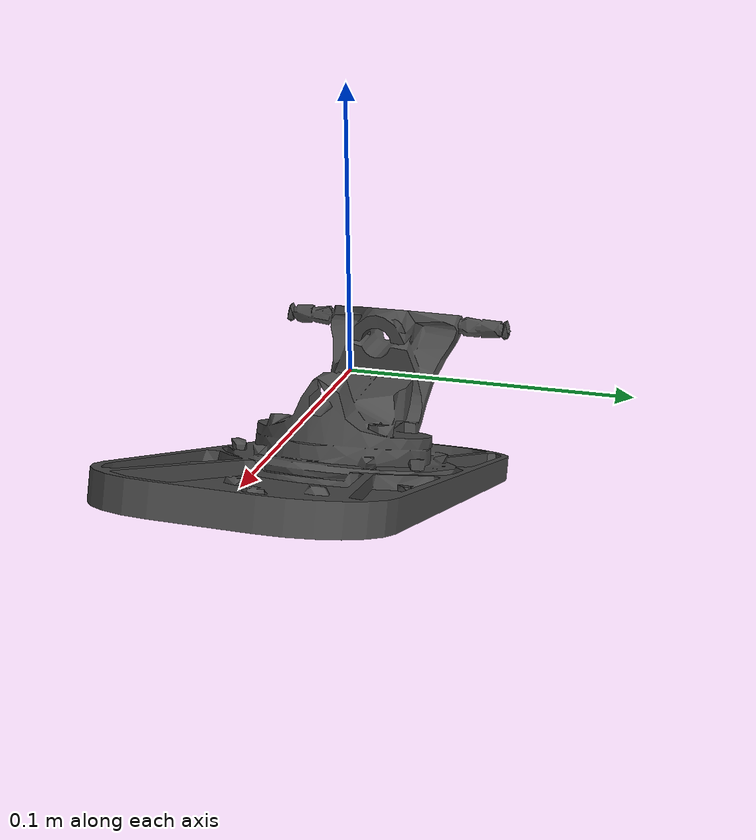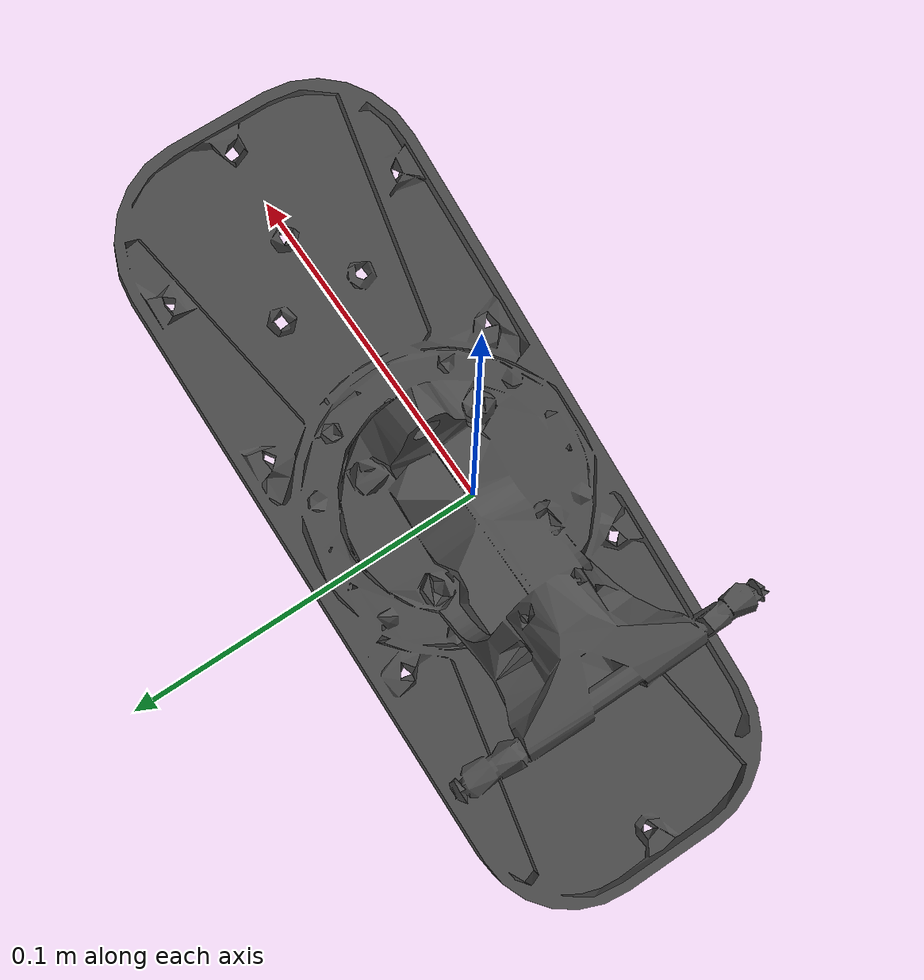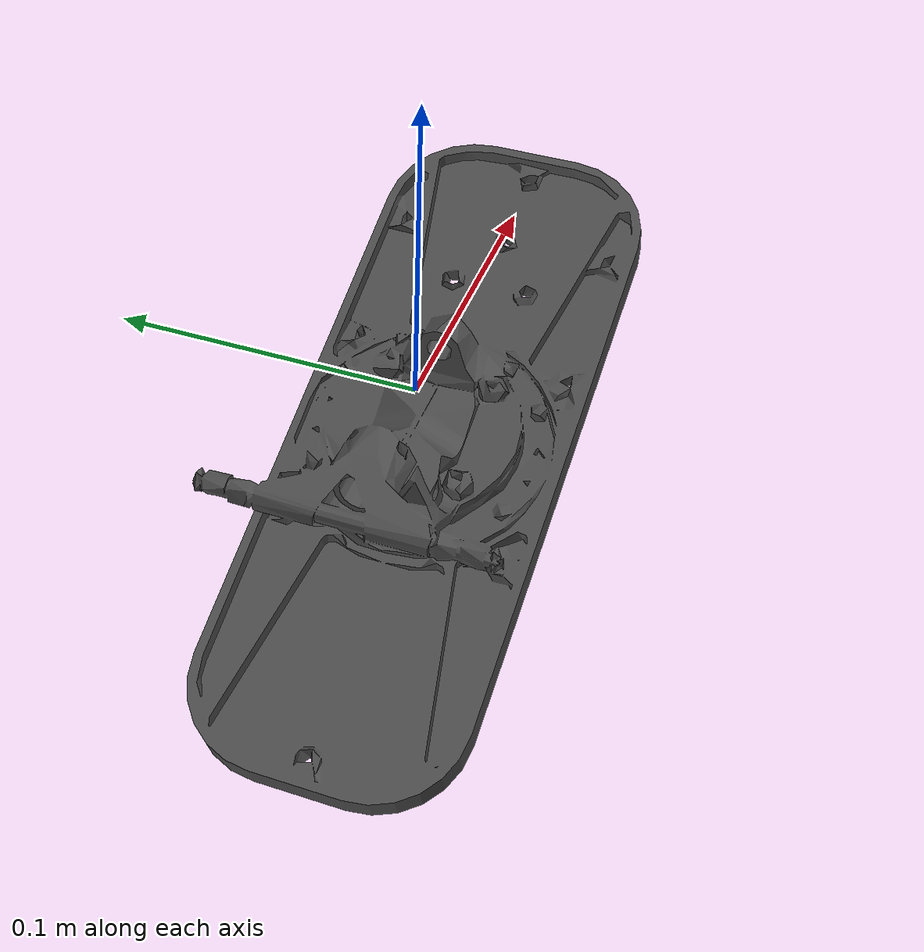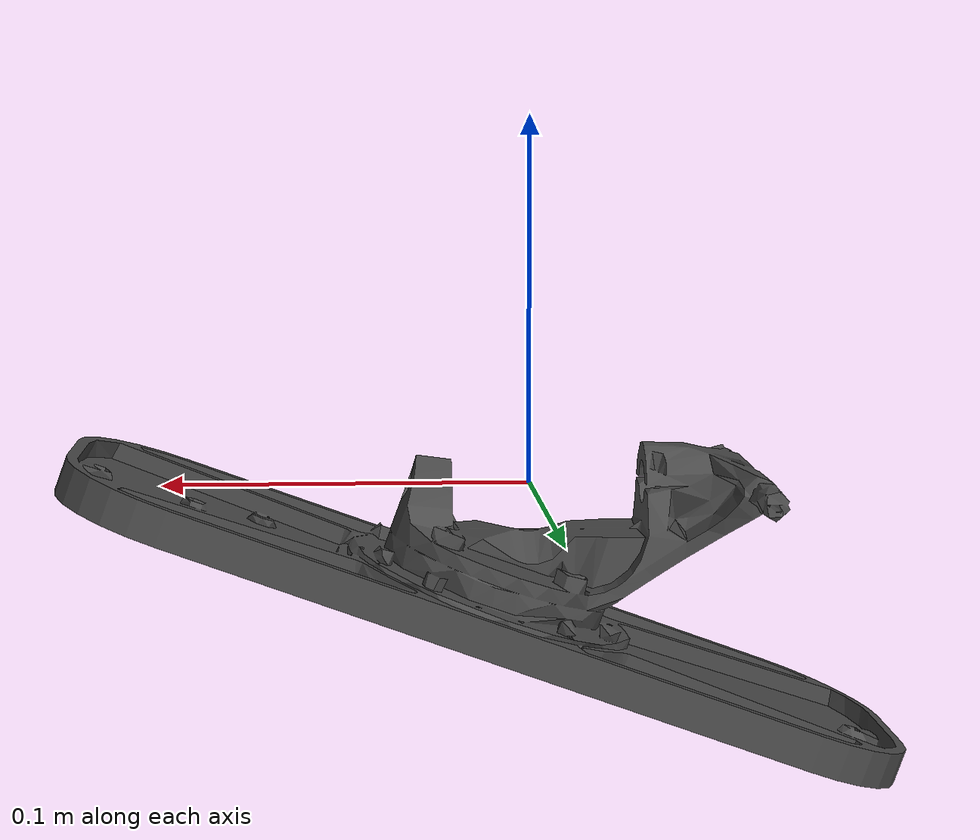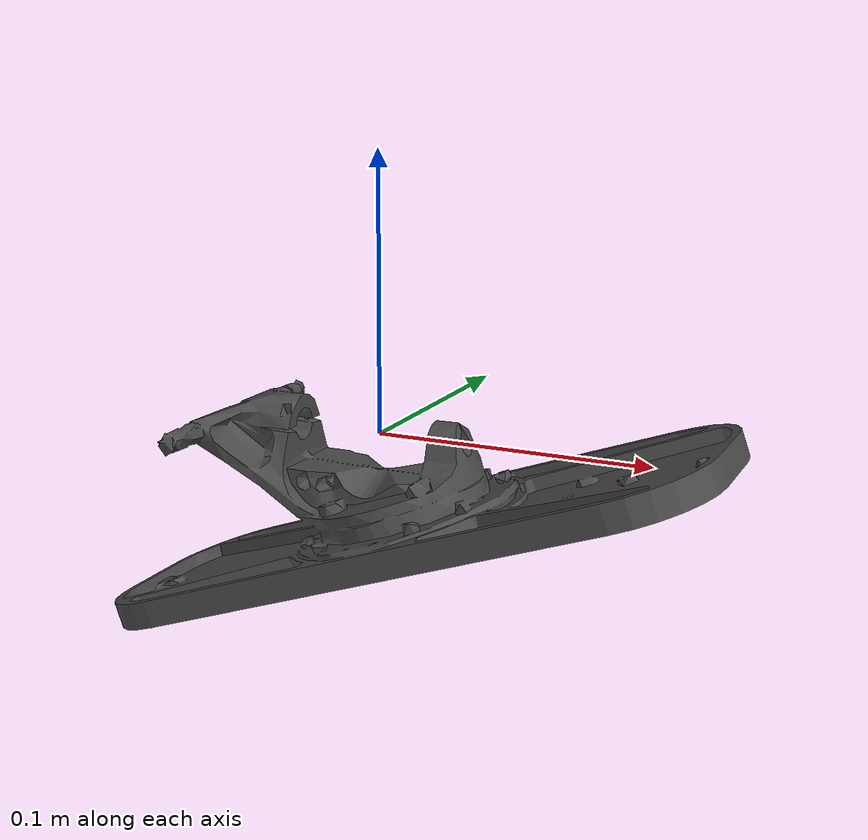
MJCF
<mujoco model="leg_7_link">
  <default>
    <default class="visual">
      <geom group="2" type="mesh" contype="0" conaffinity="0"/>
    </default>
    <default class="collision">
      <geom group="3" type="mesh"/>
    </default>
  </default>
  <asset>
    <material name="mtl_leg_7_link" specular="0.20000000000000004" shininess="1.0" rgba="0.29803922 0.29803922 0.29803922 1.0"/>
    <mesh file="leg_7_link.obj"/>
    <mesh file="leg_7_link_collision_0.obj"/>
    <mesh file="leg_7_link_collision_1.obj"/>
    <mesh file="leg_7_link_collision_2.obj"/>
    <mesh file="leg_7_link_collision_3.obj"/>
    <mesh file="leg_7_link_collision_4.obj"/>
    <mesh file="leg_7_link_collision_5.obj"/>
    <mesh file="leg_7_link_collision_6.obj"/>
    <mesh file="leg_7_link_collision_7.obj"/>
    <mesh file="leg_7_link_collision_8.obj"/>
    <mesh file="leg_7_link_collision_9.obj"/>
    <mesh file="leg_7_link_collision_10.obj"/>
    <mesh file="leg_7_link_collision_11.obj"/>
    <mesh file="leg_7_link_collision_12.obj"/>
    <mesh file="leg_7_link_collision_13.obj"/>
    <mesh file="leg_7_link_collision_14.obj"/>
    <mesh file="leg_7_link_collision_15.obj"/>
    <mesh file="leg_7_link_collision_16.obj"/>
    <mesh file="leg_7_link_collision_17.obj"/>
    <mesh file="leg_7_link_collision_18.obj"/>
    <mesh file="leg_7_link_collision_19.obj"/>
    <mesh file="leg_7_link_collision_20.obj"/>
    <mesh file="leg_7_link_collision_21.obj"/>
    <mesh file="leg_7_link_collision_22.obj"/>
    <mesh file="leg_7_link_collision_23.obj"/>
    <mesh file="leg_7_link_collision_24.obj"/>
    <mesh file="leg_7_link_collision_25.obj"/>
    <mesh file="leg_7_link_collision_26.obj"/>
    <mesh file="leg_7_link_collision_27.obj"/>
    <mesh file="leg_7_link_collision_28.obj"/>
    <mesh file="leg_7_link_collision_29.obj"/>
    <mesh file="leg_7_link_collision_30.obj"/>
    <mesh file="leg_7_link_collision_31.obj"/>
    <mesh file="leg_7_link_collision_32.obj"/>
    <mesh file="leg_7_link_collision_33.obj"/>
    <mesh file="leg_7_link_collision_34.obj"/>
    <mesh file="leg_7_link_collision_35.obj"/>
    <mesh file="leg_7_link_collision_36.obj"/>
    <mesh file="leg_7_link_collision_37.obj"/>
    <mesh file="leg_7_link_collision_38.obj"/>
    <mesh file="leg_7_link_collision_39.obj"/>
    <mesh file="leg_7_link_collision_40.obj"/>
    <mesh file="leg_7_link_collision_41.obj"/>
    <mesh file="leg_7_link_collision_42.obj"/>
    <mesh file="leg_7_link_collision_43.obj"/>
    <mesh file="leg_7_link_collision_44.obj"/>
    <mesh file="leg_7_link_collision_45.obj"/>
    <mesh file="leg_7_link_collision_46.obj"/>
    <mesh file="leg_7_link_collision_47.obj"/>
    <mesh file="leg_7_link_collision_48.obj"/>
    <mesh file="leg_7_link_collision_49.obj"/>
    <mesh file="leg_7_link_collision_50.obj"/>
    <mesh file="leg_7_link_collision_51.obj"/>
    <mesh file="leg_7_link_collision_52.obj"/>
    <mesh file="leg_7_link_collision_53.obj"/>
    <mesh file="leg_7_link_collision_54.obj"/>
    <mesh file="leg_7_link_collision_55.obj"/>
    <mesh file="leg_7_link_collision_56.obj"/>
    <mesh file="leg_7_link_collision_57.obj"/>
    <mesh file="leg_7_link_collision_58.obj"/>
    <mesh file="leg_7_link_collision_59.obj"/>
    <mesh file="leg_7_link_collision_60.obj"/>
    <mesh file="leg_7_link_collision_61.obj"/>
    <mesh file="leg_7_link_collision_62.obj"/>
    <mesh file="leg_7_link_collision_63.obj"/>
    <mesh file="leg_7_link_collision_64.obj"/>
    <mesh file="leg_7_link_collision_65.obj"/>
    <mesh file="leg_7_link_collision_66.obj"/>
    <mesh file="leg_7_link_collision_67.obj"/>
    <mesh file="leg_7_link_collision_68.obj"/>
    <mesh file="leg_7_link_collision_69.obj"/>
    <mesh file="leg_7_link_collision_70.obj"/>
    <mesh file="leg_7_link_collision_71.obj"/>
    <mesh file="leg_7_link_collision_72.obj"/>
    <mesh file="leg_7_link_collision_73.obj"/>
    <mesh file="leg_7_link_collision_74.obj"/>
    <mesh file="leg_7_link_collision_75.obj"/>
    <mesh file="leg_7_link_collision_76.obj"/>
    <mesh file="leg_7_link_collision_77.obj"/>
    <mesh file="leg_7_link_collision_78.obj"/>
    <mesh file="leg_7_link_collision_79.obj"/>
    <mesh file="leg_7_link_collision_80.obj"/>
    <mesh file="leg_7_link_collision_81.obj"/>
    <mesh file="leg_7_link_collision_82.obj"/>
    <mesh file="leg_7_link_collision_83.obj"/>
    <mesh file="leg_7_link_collision_84.obj"/>
    <mesh file="leg_7_link_collision_85.obj"/>
    <mesh file="leg_7_link_collision_86.obj"/>
    <mesh file="leg_7_link_collision_87.obj"/>
    <mesh file="leg_7_link_collision_88.obj"/>
    <mesh file="leg_7_link_collision_89.obj"/>
    <mesh file="leg_7_link_collision_90.obj"/>
    <mesh file="leg_7_link_collision_91.obj"/>
    <mesh file="leg_7_link_collision_92.obj"/>
    <mesh file="leg_7_link_collision_93.obj"/>
    <mesh file="leg_7_link_collision_94.obj"/>
    <mesh file="leg_7_link_collision_95.obj"/>
    <mesh file="leg_7_link_collision_96.obj"/>
    <mesh file="leg_7_link_collision_97.obj"/>
    <mesh file="leg_7_link_collision_98.obj"/>
    <mesh file="leg_7_link_collision_99.obj"/>
    <mesh file="leg_7_link_collision_100.obj"/>
    <mesh file="leg_7_link_collision_101.obj"/>
    <mesh file="leg_7_link_collision_102.obj"/>
    <mesh file="leg_7_link_collision_103.obj"/>
    <mesh file="leg_7_link_collision_104.obj"/>
    <mesh file="leg_7_link_collision_105.obj"/>
    <mesh file="leg_7_link_collision_106.obj"/>
    <mesh file="leg_7_link_collision_107.obj"/>
    <mesh file="leg_7_link_collision_108.obj"/>
    <mesh file="leg_7_link_collision_109.obj"/>
    <mesh file="leg_7_link_collision_110.obj"/>
    <mesh file="leg_7_link_collision_111.obj"/>
    <mesh file="leg_7_link_collision_112.obj"/>
    <mesh file="leg_7_link_collision_113.obj"/>
    <mesh file="leg_7_link_collision_114.obj"/>
    <mesh file="leg_7_link_collision_115.obj"/>
    <mesh file="leg_7_link_collision_116.obj"/>
    <mesh file="leg_7_link_collision_117.obj"/>
    <mesh file="leg_7_link_collision_118.obj"/>
    <mesh file="leg_7_link_collision_119.obj"/>
    <mesh file="leg_7_link_collision_120.obj"/>
    <mesh file="leg_7_link_collision_121.obj"/>
    <mesh file="leg_7_link_collision_122.obj"/>
    <mesh file="leg_7_link_collision_123.obj"/>
    <mesh file="leg_7_link_collision_124.obj"/>
    <mesh file="leg_7_link_collision_125.obj"/>
    <mesh file="leg_7_link_collision_126.obj"/>
    <mesh file="leg_7_link_collision_127.obj"/>
    <mesh file="leg_7_link_collision_128.obj"/>
    <mesh file="leg_7_link_collision_129.obj"/>
    <mesh file="leg_7_link_collision_130.obj"/>
    <mesh file="leg_7_link_collision_131.obj"/>
    <mesh file="leg_7_link_collision_132.obj"/>
    <mesh file="leg_7_link_collision_133.obj"/>
    <mesh file="leg_7_link_collision_134.obj"/>
    <mesh file="leg_7_link_collision_135.obj"/>
    <mesh file="leg_7_link_collision_136.obj"/>
    <mesh file="leg_7_link_collision_137.obj"/>
    <mesh file="leg_7_link_collision_138.obj"/>
    <mesh file="leg_7_link_collision_139.obj"/>
    <mesh file="leg_7_link_collision_140.obj"/>
    <mesh file="leg_7_link_collision_141.obj"/>
    <mesh file="leg_7_link_collision_142.obj"/>
    <mesh file="leg_7_link_collision_143.obj"/>
    <mesh file="leg_7_link_collision_144.obj"/>
    <mesh file="leg_7_link_collision_145.obj"/>
    <mesh file="leg_7_link_collision_146.obj"/>
    <mesh file="leg_7_link_collision_147.obj"/>
    <mesh file="leg_7_link_collision_148.obj"/>
    <mesh file="leg_7_link_collision_149.obj"/>
    <mesh file="leg_7_link_collision_150.obj"/>
    <mesh file="leg_7_link_collision_151.obj"/>
    <mesh file="leg_7_link_collision_152.obj"/>
    <mesh file="leg_7_link_collision_153.obj"/>
    <mesh file="leg_7_link_collision_154.obj"/>
    <mesh file="leg_7_link_collision_155.obj"/>
    <mesh file="leg_7_link_collision_156.obj"/>
    <mesh file="leg_7_link_collision_157.obj"/>
    <mesh file="leg_7_link_collision_158.obj"/>
    <mesh file="leg_7_link_collision_159.obj"/>
    <mesh file="leg_7_link_collision_160.obj"/>
    <mesh file="leg_7_link_collision_161.obj"/>
    <mesh file="leg_7_link_collision_162.obj"/>
    <mesh file="leg_7_link_collision_163.obj"/>
    <mesh file="leg_7_link_collision_164.obj"/>
    <mesh file="leg_7_link_collision_165.obj"/>
    <mesh file="leg_7_link_collision_166.obj"/>
  </asset>
  <worldbody>
    <body name="leg_7_link">
      <geom material="mtl_leg_7_link" mesh="leg_7_link" class="visual"/>
      <geom mesh="leg_7_link_collision_0" rgba="0.35443769428241423 0.22313825969045564 0.36350713951730107 1" class="collision"/>
      <geom mesh="leg_7_link_collision_1" rgba="0.9439924236397261 0.31659736304225083 0.5707456559245806 1" class="collision"/>
      <geom mesh="leg_7_link_collision_2" rgba="0.47027321369519126 0.9261207448587704 0.11095676967422496 1" class="collision"/>
      <geom mesh="leg_7_link_collision_3" rgba="0.4547275079631218 0.5865613635852328 0.4678228439728893 1" class="collision"/>
      <geom mesh="leg_7_link_collision_4" rgba="0.06729561892519165 0.26913833691470856 0.40767708905102007 1" class="collision"/>
      <geom mesh="leg_7_link_collision_5" rgba="0.1288221329703223 0.3845425882161676 0.3080237024029624 1" class="collision"/>
      <geom mesh="leg_7_link_collision_6" rgba="0.9162180965393661 0.7365351388631937 0.45110607663093705 1" class="collision"/>
      <geom mesh="leg_7_link_collision_7" rgba="0.5679396493339576 0.531032253463506 0.37678617685333937 1" class="collision"/>
      <geom mesh="leg_7_link_collision_8" rgba="0.5636941912035329 0.5721260964017111 0.45097538561853967 1" class="collision"/>
      <geom mesh="leg_7_link_collision_9" rgba="0.4682610319835002 0.38256547238132965 0.9129720892232779 1" class="collision"/>
      <geom mesh="leg_7_link_collision_10" rgba="0.6295197459871612 0.20682017630371718 0.4187740944815169 1" class="collision"/>
      <geom mesh="leg_7_link_collision_11" rgba="0.3263692920304263 0.09686467006129751 0.9161999544128265 1" class="collision"/>
      <geom mesh="leg_7_link_collision_12" rgba="0.025474974731347078 0.08101625214960984 0.7607130900996439 1" class="collision"/>
      <geom mesh="leg_7_link_collision_13" rgba="0.5559492514313642 0.9880182589852337 0.03070822138533702 1" class="collision"/>
      <geom mesh="leg_7_link_collision_14" rgba="0.5343959686344356 0.44432995093036287 0.08335469586841149 1" class="collision"/>
      <geom mesh="leg_7_link_collision_15" rgba="0.9962328771203125 0.09939648792906586 0.7602288353373067 1" class="collision"/>
      <geom mesh="leg_7_link_collision_16" rgba="0.3747229483600375 0.9136586496471032 0.041582193990862604 1" class="collision"/>
      <geom mesh="leg_7_link_collision_17" rgba="0.9280276420717187 0.33509692794188717 0.14659285551917012 1" class="collision"/>
      <geom mesh="leg_7_link_collision_18" rgba="0.7118946850652262 0.3890456315461319 0.45023423042013055 1" class="collision"/>
      <geom mesh="leg_7_link_collision_19" rgba="0.9858513560677918 0.9207344461626233 0.6152349994546901 1" class="collision"/>
      <geom mesh="leg_7_link_collision_20" rgba="0.07006762728813332 0.8791068708441676 0.21538508313030014 1" class="collision"/>
      <geom mesh="leg_7_link_collision_21" rgba="0.8379476591220828 0.43621070575788257 0.2012792213506901 1" class="collision"/>
      <geom mesh="leg_7_link_collision_22" rgba="0.7915847714130763 0.4392907528678952 0.07013190418858695 1" class="collision"/>
      <geom mesh="leg_7_link_collision_23" rgba="0.6295382269808052 0.42790991512313437 0.7249762269592562 1" class="collision"/>
      <geom mesh="leg_7_link_collision_24" rgba="0.7141391363922843 0.9149337589917542 0.38527850440202294 1" class="collision"/>
      <geom mesh="leg_7_link_collision_25" rgba="0.1826941333663461 0.23150871647907545 0.9445043302471169 1" class="collision"/>
      <geom mesh="leg_7_link_collision_26" rgba="0.6924846394399414 0.05765483629939805 0.8795751660377318 1" class="collision"/>
      <geom mesh="leg_7_link_collision_27" rgba="0.14358068044188788 0.8832713660551137 0.1753220292564146 1" class="collision"/>
      <geom mesh="leg_7_link_collision_28" rgba="0.8732970992297818 0.4150494722857807 0.922814388385603 1" class="collision"/>
      <geom mesh="leg_7_link_collision_29" rgba="0.8016467918787058 0.9219020509281636 0.5633445981856664 1" class="collision"/>
      <geom mesh="leg_7_link_collision_30" rgba="0.6276145149146825 0.13546563828940106 0.711253707766581 1" class="collision"/>
      <geom mesh="leg_7_link_collision_31" rgba="0.29958911511141506 0.4133972542845904 0.5881592254710593 1" class="collision"/>
      <geom mesh="leg_7_link_collision_32" rgba="0.6902360129455379 0.7491743985734255 0.13934429067454535 1" class="collision"/>
      <geom mesh="leg_7_link_collision_33" rgba="0.292742650011918 0.9256902378805525 0.5654204455105049 1" class="collision"/>
      <geom mesh="leg_7_link_collision_34" rgba="0.8017483907618865 0.4774644072283628 0.39415629158582977 1" class="collision"/>
      <geom mesh="leg_7_link_collision_35" rgba="0.5516215094441504 0.12518732051126003 0.8940521717898824 1" class="collision"/>
      <geom mesh="leg_7_link_collision_36" rgba="0.5199175773100054 0.4039309369708838 0.6367783743899063 1" class="collision"/>
      <geom mesh="leg_7_link_collision_37" rgba="0.8220966774001618 0.39179609283801 0.01599203181030384 1" class="collision"/>
      <geom mesh="leg_7_link_collision_38" rgba="0.8086564534094833 0.39782671522597857 0.3645518295028187 1" class="collision"/>
      <geom mesh="leg_7_link_collision_39" rgba="0.8165730623242405 0.2177381552034494 0.6798629731946978 1" class="collision"/>
      <geom mesh="leg_7_link_collision_40" rgba="0.2846736118229537 0.7403235240472037 0.09868405740080644 1" class="collision"/>
      <geom mesh="leg_7_link_collision_41" rgba="0.2736079836048846 0.6442957435089893 0.03819443351631735 1" class="collision"/>
      <geom mesh="leg_7_link_collision_42" rgba="0.38505340580258907 0.6618590796112905 0.7405775083665721 1" class="collision"/>
      <geom mesh="leg_7_link_collision_43" rgba="0.4271235156763259 0.23600478238330402 0.9920730900501771 1" class="collision"/>
      <geom mesh="leg_7_link_collision_44" rgba="0.7854714951820448 0.22836799251601259 0.06960552131553277 1" class="collision"/>
      <geom mesh="leg_7_link_collision_45" rgba="0.9877229984625048 0.4324364790127092 0.7770104654362224 1" class="collision"/>
      <geom mesh="leg_7_link_collision_46" rgba="0.4206854477560814 0.24504527497852202 0.9357343384272047 1" class="collision"/>
      <geom mesh="leg_7_link_collision_47" rgba="0.5121001177806818 0.4779503972599545 0.7567055124806791 1" class="collision"/>
      <geom mesh="leg_7_link_collision_48" rgba="0.2713412904882053 0.018114737126311287 0.6248227644261397 1" class="collision"/>
      <geom mesh="leg_7_link_collision_49" rgba="0.9262165594013682 0.8408485560435008 0.46111020804404323 1" class="collision"/>
      <geom mesh="leg_7_link_collision_50" rgba="0.03320717259047645 0.24491991312375516 0.24613424648924198 1" class="collision"/>
      <geom mesh="leg_7_link_collision_51" rgba="0.4132097556978508 0.725963026199002 0.021084118673802332 1" class="collision"/>
      <geom mesh="leg_7_link_collision_52" rgba="0.9569893690118669 0.38690544075370503 0.3038690698967328 1" class="collision"/>
      <geom mesh="leg_7_link_collision_53" rgba="0.09449640827540495 0.6087337421028411 0.03257920659126179 1" class="collision"/>
      <geom mesh="leg_7_link_collision_54" rgba="0.9595656068608369 0.8325404625353808 0.14276661944566948 1" class="collision"/>
      <geom mesh="leg_7_link_collision_55" rgba="0.9761495394624858 0.3353283183240503 0.42498060039762564 1" class="collision"/>
      <geom mesh="leg_7_link_collision_56" rgba="0.12330430979284424 0.3969986695099782 0.06701559532648116 1" class="collision"/>
      <geom mesh="leg_7_link_collision_57" rgba="0.08798994062607635 0.8175099622035338 0.35305691217006807 1" class="collision"/>
      <geom mesh="leg_7_link_collision_58" rgba="0.2856596015552959 0.9000142213178914 0.15772355114175618 1" class="collision"/>
      <geom mesh="leg_7_link_collision_59" rgba="0.9545818986326033 0.7811721594844826 0.7905239798999921 1" class="collision"/>
      <geom mesh="leg_7_link_collision_60" rgba="0.5573691364081406 0.20869390666030097 0.5188147548285045 1" class="collision"/>
      <geom mesh="leg_7_link_collision_61" rgba="0.5120106580988131 0.3199207821329221 0.37645439374999756 1" class="collision"/>
      <geom mesh="leg_7_link_collision_62" rgba="0.892846004546115 0.9837091655919161 0.18210590261483017 1" class="collision"/>
      <geom mesh="leg_7_link_collision_63" rgba="0.48628609593433514 0.11946598321353852 0.8781381259513864 1" class="collision"/>
      <geom mesh="leg_7_link_collision_64" rgba="0.9617523363995887 0.5933988623100918 0.3716761574311115 1" class="collision"/>
      <geom mesh="leg_7_link_collision_65" rgba="0.5110888144482949 0.5993377504531752 0.5520249779994938 1" class="collision"/>
      <geom mesh="leg_7_link_collision_66" rgba="0.6296984275567425 0.3760657962389853 0.7814306933004531 1" class="collision"/>
      <geom mesh="leg_7_link_collision_67" rgba="0.4080585308606043 0.15983269048580984 0.24760524394859695 1" class="collision"/>
      <geom mesh="leg_7_link_collision_68" rgba="0.852169476263709 0.7002771100355404 0.736861003092556 1" class="collision"/>
      <geom mesh="leg_7_link_collision_69" rgba="0.9379903687475488 0.6483751986439819 0.03322241409677407 1" class="collision"/>
      <geom mesh="leg_7_link_collision_70" rgba="0.803938600935794 0.8710356270944453 0.4712809208416118 1" class="collision"/>
      <geom mesh="leg_7_link_collision_71" rgba="0.12014649745339401 0.8987430480081068 0.7098433117709814 1" class="collision"/>
      <geom mesh="leg_7_link_collision_72" rgba="0.8867394736938093 0.8382604153010398 0.07463498999893681 1" class="collision"/>
      <geom mesh="leg_7_link_collision_73" rgba="0.04807621455230604 0.9677511307008956 0.24857207848936624 1" class="collision"/>
      <geom mesh="leg_7_link_collision_74" rgba="0.29931180145119707 0.10924423238054648 0.4565199102538997 1" class="collision"/>
      <geom mesh="leg_7_link_collision_75" rgba="0.3686199332857385 0.09441840147067881 0.8309774058261902 1" class="collision"/>
      <geom mesh="leg_7_link_collision_76" rgba="0.830371169367068 0.9116888131684674 0.36733179854451925 1" class="collision"/>
      <geom mesh="leg_7_link_collision_77" rgba="0.16088584715829424 0.3321713013077705 0.5704317082328689 1" class="collision"/>
      <geom mesh="leg_7_link_collision_78" rgba="0.6606797927393298 0.29471611535863684 0.3088799444716622 1" class="collision"/>
      <geom mesh="leg_7_link_collision_79" rgba="0.4102804847742083 0.4136836451750946 0.9569210421045887 1" class="collision"/>
      <geom mesh="leg_7_link_collision_80" rgba="0.2513205370175525 0.7091814219871051 0.4671008189862881 1" class="collision"/>
      <geom mesh="leg_7_link_collision_81" rgba="0.3820193104237338 0.7807199595885611 0.22084165350860363 1" class="collision"/>
      <geom mesh="leg_7_link_collision_82" rgba="0.4983032009401248 0.7329757027518343 0.3529216000890898 1" class="collision"/>
      <geom mesh="leg_7_link_collision_83" rgba="0.7367943266480267 0.9079352199448091 0.16172593408533564 1" class="collision"/>
      <geom mesh="leg_7_link_collision_84" rgba="0.8799206812181001 0.7834063244131204 0.028629821798921817 1" class="collision"/>
      <geom mesh="leg_7_link_collision_85" rgba="0.8850503306045996 0.6743143936624253 0.08563365238393794 1" class="collision"/>
      <geom mesh="leg_7_link_collision_86" rgba="0.9995504913629565 0.5935595783697273 0.270259788316319 1" class="collision"/>
      <geom mesh="leg_7_link_collision_87" rgba="0.44746678919327953 0.42243648628175934 0.8815238581343521 1" class="collision"/>
      <geom mesh="leg_7_link_collision_88" rgba="0.1951294984609081 0.2182470616804888 0.9618454455636811 1" class="collision"/>
      <geom mesh="leg_7_link_collision_89" rgba="0.25228398021593357 0.9464546255896971 0.9342582984424892 1" class="collision"/>
      <geom mesh="leg_7_link_collision_90" rgba="0.0011042030681623904 0.907073336912429 0.40218421869702425 1" class="collision"/>
      <geom mesh="leg_7_link_collision_91" rgba="0.34604586632112144 0.4801241162955455 0.5691680834849954 1" class="collision"/>
      <geom mesh="leg_7_link_collision_92" rgba="0.6515544068219818 0.9876321616138172 0.7108633291082278 1" class="collision"/>
      <geom mesh="leg_7_link_collision_93" rgba="0.5534734764161361 0.013365938652500686 0.6737996459652493 1" class="collision"/>
      <geom mesh="leg_7_link_collision_94" rgba="0.18316737723080723 0.08777622754978154 0.0563472653860938 1" class="collision"/>
      <geom mesh="leg_7_link_collision_95" rgba="0.9755101389944508 0.17300249587458538 0.10550244038332601 1" class="collision"/>
      <geom mesh="leg_7_link_collision_96" rgba="0.5583967388470493 0.021883675298509764 0.7395217882778097 1" class="collision"/>
      <geom mesh="leg_7_link_collision_97" rgba="0.5559162984898088 0.38483079095227524 0.740603379838657 1" class="collision"/>
      <geom mesh="leg_7_link_collision_98" rgba="0.15094761072566065 0.014994181621289293 0.884462621329979 1" class="collision"/>
      <geom mesh="leg_7_link_collision_99" rgba="0.4145089733214975 0.3690528734176587 0.31728520563008156 1" class="collision"/>
      <geom mesh="leg_7_link_collision_100" rgba="0.6519947052254592 0.23296235485422234 0.5548055488818422 1" class="collision"/>
      <geom mesh="leg_7_link_collision_101" rgba="0.7591691550661 0.17669662163075406 0.013561987450904422 1" class="collision"/>
      <geom mesh="leg_7_link_collision_102" rgba="0.1565303987833413 0.5062601297327377 0.4352051147016107 1" class="collision"/>
      <geom mesh="leg_7_link_collision_103" rgba="0.472438887591515 0.8888040755502785 0.5728842204084246 1" class="collision"/>
      <geom mesh="leg_7_link_collision_104" rgba="0.11261086965167355 0.2544231888751137 0.0836216460109136 1" class="collision"/>
      <geom mesh="leg_7_link_collision_105" rgba="0.3735132032386057 0.37923822240739913 0.32778271133207204 1" class="collision"/>
      <geom mesh="leg_7_link_collision_106" rgba="0.0441598338768836 0.9818835797002623 0.3120164689388151 1" class="collision"/>
      <geom mesh="leg_7_link_collision_107" rgba="0.15012117928197377 0.2687345646322026 0.6899976374866754 1" class="collision"/>
      <geom mesh="leg_7_link_collision_108" rgba="0.9214844341856567 0.6179808101883398 0.33521550066088124 1" class="collision"/>
      <geom mesh="leg_7_link_collision_109" rgba="0.2974301033711244 0.6787975317567179 0.0073796791268534445 1" class="collision"/>
      <geom mesh="leg_7_link_collision_110" rgba="0.6047184858305177 0.6163380159743547 0.821763887626875 1" class="collision"/>
      <geom mesh="leg_7_link_collision_111" rgba="0.6558827105226107 0.26723321170020076 0.8316375619895148 1" class="collision"/>
      <geom mesh="leg_7_link_collision_112" rgba="0.5598876688109826 0.2449606856274219 0.6972286300271429 1" class="collision"/>
      <geom mesh="leg_7_link_collision_113" rgba="0.7173436240880956 0.8818592363718103 0.7400010483092677 1" class="collision"/>
      <geom mesh="leg_7_link_collision_114" rgba="0.6795761746296708 0.13440619942715848 0.2038045154110597 1" class="collision"/>
      <geom mesh="leg_7_link_collision_115" rgba="0.21722815260449946 0.3317342891488131 0.4449407718254559 1" class="collision"/>
      <geom mesh="leg_7_link_collision_116" rgba="0.9281012370672556 0.6378321979503249 0.7043945483263571 1" class="collision"/>
      <geom mesh="leg_7_link_collision_117" rgba="0.42701022356076246 0.773897232753549 0.6502831390054644 1" class="collision"/>
      <geom mesh="leg_7_link_collision_118" rgba="0.6823346785418742 0.3626332860148531 0.47082671764419404 1" class="collision"/>
      <geom mesh="leg_7_link_collision_119" rgba="0.0242120709268141 0.8299670293460372 0.2529582723293773 1" class="collision"/>
      <geom mesh="leg_7_link_collision_120" rgba="0.052271001341015255 0.5699248196368497 0.16559530137846168 1" class="collision"/>
      <geom mesh="leg_7_link_collision_121" rgba="0.6616569501885616 0.6118426105864516 0.6549298563897139 1" class="collision"/>
      <geom mesh="leg_7_link_collision_122" rgba="0.37846402325006623 0.7415177828670334 0.25669673512649904 1" class="collision"/>
      <geom mesh="leg_7_link_collision_123" rgba="0.1972655341749363 0.6822098758403508 0.4744778911005054 1" class="collision"/>
      <geom mesh="leg_7_link_collision_124" rgba="0.5856908983201471 0.9498403834672114 0.23093972137526741 1" class="collision"/>
      <geom mesh="leg_7_link_collision_125" rgba="0.2575318980563944 0.8211296946213649 0.9223362632955405 1" class="collision"/>
      <geom mesh="leg_7_link_collision_126" rgba="0.7084605473580899 0.3716768653702811 0.3976957411928401 1" class="collision"/>
      <geom mesh="leg_7_link_collision_127" rgba="0.6431369480481912 0.9716463876330285 0.003125410900478909 1" class="collision"/>
      <geom mesh="leg_7_link_collision_128" rgba="0.5845209029656501 0.22952891452675084 0.8283177367676128 1" class="collision"/>
      <geom mesh="leg_7_link_collision_129" rgba="0.8741245898353144 0.5281455842781323 0.1790088885857044 1" class="collision"/>
      <geom mesh="leg_7_link_collision_130" rgba="0.3627991027304567 0.44999217066435626 0.19748478278745873 1" class="collision"/>
      <geom mesh="leg_7_link_collision_131" rgba="0.48274363485914895 0.5068281877564902 0.4684353538710081 1" class="collision"/>
      <geom mesh="leg_7_link_collision_132" rgba="0.689427111441448 0.14345649352705314 0.7555949008928536 1" class="collision"/>
      <geom mesh="leg_7_link_collision_133" rgba="0.7628646019586511 0.35249892765856583 0.5697307571385447 1" class="collision"/>
      <geom mesh="leg_7_link_collision_134" rgba="0.34852443514806053 0.5862989875559895 0.4965858388359873 1" class="collision"/>
      <geom mesh="leg_7_link_collision_135" rgba="0.4678380083554343 0.6918605287082416 0.7796701915227775 1" class="collision"/>
      <geom mesh="leg_7_link_collision_136" rgba="0.4511064219341181 0.9206689072393279 0.7536487386584184 1" class="collision"/>
      <geom mesh="leg_7_link_collision_137" rgba="0.18131990030325584 0.37246280856435954 0.7959706707048786 1" class="collision"/>
      <geom mesh="leg_7_link_collision_138" rgba="0.23374367525290285 0.27733574476483647 0.9991818981877303 1" class="collision"/>
      <geom mesh="leg_7_link_collision_139" rgba="0.6249302531750616 0.8538388329818725 0.2509029821238573 1" class="collision"/>
      <geom mesh="leg_7_link_collision_140" rgba="0.9879614211714816 0.9573697893789993 0.3028937321863767 1" class="collision"/>
      <geom mesh="leg_7_link_collision_141" rgba="0.7542964767707172 0.5473512154307792 0.278490454417336 1" class="collision"/>
      <geom mesh="leg_7_link_collision_142" rgba="0.8474802821802709 0.17658693677164183 0.8383638449326002 1" class="collision"/>
      <geom mesh="leg_7_link_collision_143" rgba="0.8724003692440861 0.34830419790446343 0.9198627563606738 1" class="collision"/>
      <geom mesh="leg_7_link_collision_144" rgba="0.3850717108236127 0.13132334307630344 0.2002962287398905 1" class="collision"/>
      <geom mesh="leg_7_link_collision_145" rgba="0.6122693284630519 0.6133200779089646 0.3824251843169757 1" class="collision"/>
      <geom mesh="leg_7_link_collision_146" rgba="0.5093279297672223 0.4053841574392485 0.6779967065579465 1" class="collision"/>
      <geom mesh="leg_7_link_collision_147" rgba="0.43992958069055 0.3282091904063207 0.2459849393083824 1" class="collision"/>
      <geom mesh="leg_7_link_collision_148" rgba="0.7332588474899646 0.49543584749207537 0.3286915810393852 1" class="collision"/>
      <geom mesh="leg_7_link_collision_149" rgba="0.4198517589994498 0.8850165113325048 0.6555195808108686 1" class="collision"/>
      <geom mesh="leg_7_link_collision_150" rgba="0.03785509757120653 0.9185222612231435 0.29343222795905155 1" class="collision"/>
      <geom mesh="leg_7_link_collision_151" rgba="0.08930664785264364 0.16434744939960821 0.2891982041300156 1" class="collision"/>
      <geom mesh="leg_7_link_collision_152" rgba="0.20620438708311895 0.6263048327592875 0.14933027288213574 1" class="collision"/>
      <geom mesh="leg_7_link_collision_153" rgba="0.26707330744667857 0.4239560689421956 0.19694413036297886 1" class="collision"/>
      <geom mesh="leg_7_link_collision_154" rgba="0.9051387273032137 0.49859506037380674 0.022292643316264904 1" class="collision"/>
      <geom mesh="leg_7_link_collision_155" rgba="0.7554469131820617 0.357458143139346 0.5756543359245757 1" class="collision"/>
      <geom mesh="leg_7_link_collision_156" rgba="0.430281235071599 0.7549537433144198 0.00600717420883623 1" class="collision"/>
      <geom mesh="leg_7_link_collision_157" rgba="0.19313416679686124 0.23940497933411897 0.8607866502836189 1" class="collision"/>
      <geom mesh="leg_7_link_collision_158" rgba="0.3058554952276681 0.9303686245036488 0.29046433351644896 1" class="collision"/>
      <geom mesh="leg_7_link_collision_159" rgba="0.6434071120091157 0.7595213089845656 0.6128377233366742 1" class="collision"/>
      <geom mesh="leg_7_link_collision_160" rgba="0.8482807252216461 0.5460257177488281 0.6873917452173697 1" class="collision"/>
      <geom mesh="leg_7_link_collision_161" rgba="0.9183121649124126 0.620812121502385 0.44416022470087246 1" class="collision"/>
      <geom mesh="leg_7_link_collision_162" rgba="0.22686094708573556 0.1382168085413491 0.5478381603212196 1" class="collision"/>
      <geom mesh="leg_7_link_collision_163" rgba="0.32847040563610175 0.8646053605215698 0.4703047874095594 1" class="collision"/>
      <geom mesh="leg_7_link_collision_164" rgba="0.7380167118986815 0.7393309606166196 0.9412335684037882 1" class="collision"/>
      <geom mesh="leg_7_link_collision_165" rgba="0.24009590700734873 0.9212395016465664 0.7070754467931981 1" class="collision"/>
      <geom mesh="leg_7_link_collision_166" rgba="0.3274196104031456 0.18223669995451874 0.818371129958754 1" class="collision"/>
    </body>
  </worldbody>
</mujoco>
